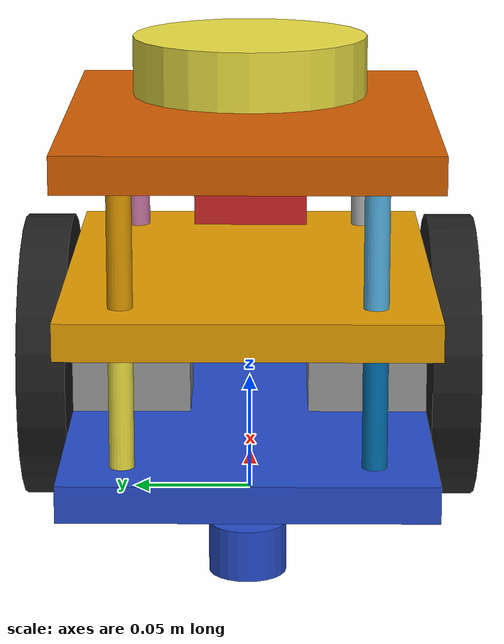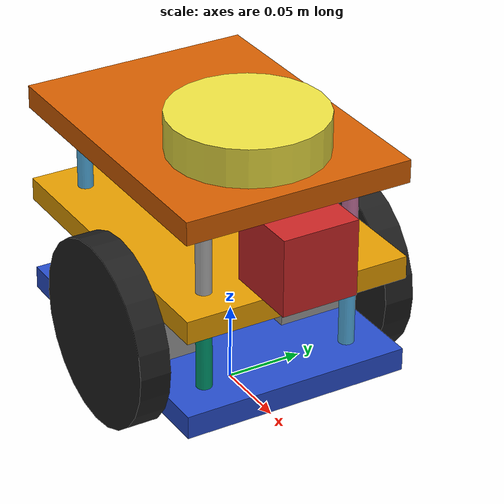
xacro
<?xml version="1.0"?>
<robot name="ros_robot" xmlns:xacro = "http://www.ros.org/wiki/xacro">
    <xacro:include filename="$(find robot_description)/urdf/properties.xacro"/>

    <xacro:include filename="$(find robot_description)/urdf/base.xacro"/>
    <xacro:include filename="$(find robot_description)/urdf/wheel.xacro"/>
    <xacro:include filename="$(find robot_description)/urdf/stack.xacro"/>
    <xacro:include filename="$(find robot_description)/urdf/motor.xacro"/>
    <xacro:include filename="$(find robot_description)/urdf/camera.xacro"/>
    <xacro:include filename="$(find robot_description)/urdf/lidar.xacro"/>

    <xacro:base name="base_robot"/>
    <xacro:motor

        name="left"
        translation = "0 0.05 0.0275"
        rotation = "${-PI/2} 0 0"
        parent = "base_link"

    />
    <xacro:motor

        name="right"
        translation = "0 -0.05 0.0275"
        rotation = "${-PI/2} 0 0"
        parent = "base_link"

    />
    <xacro:wheel

        name="left"
        translation = "0 0 0.035"
        rotation = "0 0 0"
        parent = "left_motor"

    />
    <xacro:wheel
        name="right"
        translation = "0 0 -0.035"
        rotation = "0 0 0"
        parent = "right_motor"
    />

    <xacro:stack
        name="first"
        translation = "-0.02 0 ${STACK_HEIGHT}"
        rotation = "0 0 0"
        parent = "base_link"
    />

    <xacro:stack
        name="secound"
        translation = "0 0 ${STACK_HEIGHT}"
        rotation = "0 0 0"
        parent = "first_stack"
    />

    <xacro:camera_link
        translation="0.0975 0 0.0325"
        rotation="0 0 0"
        parent="first_stack"
    />

    <xacro:lidar_link
        translation="0.04 0 0.02"
        rotation="0 0 0"
        parent="secound_stack"
    />
 </robot>

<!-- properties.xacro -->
<robot xmlns:xacro="http://www.ros.org/wiki/xacro" >
     <!-- basic constant variable-->
    <xacro:property name="PI" value= "3.1415926"/>

    <xacro:property name="SIZE_BASE" value= "0.2 0.15 0.015"/>

    <xacro:property name="WHEEL_RADIUS" value= "0.06"/>
    <xacro:property name="U_MAX" value= "10.0"/>
    <xacro:property name="V_MAX" value= "20.0"/>
    <xacro:property name="WHEEL_JOINT_DAMP" value= "0.3"/>

    <xacro:property name="RADIUS_CASTER_HOLDER" value= "0.015"/>
    <xacro:property name="LENGHT_CASTER_HOLDER" value= "0.02"/>
    <xacro:property name="RADIUS_CASTER_WHEEL" value= "0.01"/>

    <xacro:property name="SIZE_MOTOR" value= "0.04 0.04 0.05"/>

    <xacro:property name="STICK_RADIUS" value= "0.005"/>
    <xacro:property name="STICK_HEIGHT" value= "0.05"/>

    <xacro:property name="STICK_TRANSLATION_X" value= "0.075"/>
    <xacro:property name="STICK_TRANSLATION_Y" value= "0.05"/>
    <xacro:property name="STICK_TRANSLATION_Z" value= "-0.0325"/>

    <xacro:property name="STACK_HEIGHT" value= "0.065"/>

    <!-- mass of each link -->
    <xacro:property name="MASS_MOTOR" value= "0.2"/>
    <xacro:property name="MASS_STACK" value="0.25"/>
    <xacro:property name="MASS_WHEEL" value= "0.3"/>
    <xacro:property name="MASS_CASTER_HOLDER" value= "0.01413717"/>
    <xacro:property name="MASS_CASTER_WHEEL" value= "0.00418879"/>
    <xacro:property name="MASS_STICK" value= "0.003927"/>
    <!-- center of mass of each link -->
    <xacro:property name="COM_MOTOR" value= "0 0 0"/>
    <xacro:property name="COM_STACK" value= "0 0 0"/>
    <xacro:property name="COM_WHEEL" value= "0 0 0"/>
    <xacro:property name="COM_CASTER_HOLDER" value= "0 0 0"/>
    <xacro:property name="COM_CASTER_WHEEL" value= "0 0 0"/>
    <xacro:property name="COM_STICK" value= "0 0 0"/>
    <!-- inertia value of each link -->
    <xacro:property name="Ixx_stack" value= "0.009"/>
    <xacro:property name="Ixy_stack" value= "0"/>
    <xacro:property name="Ixz_stack" value= "0"/>
    <xacro:property name="Iyy_stack" value= "0.0015"/>
    <xacro:property name="Iyz_stack" value= "0"/>
    <xacro:property name="Izz_stack" value= "0.0023"/>

    <xacro:property name="Ixx_stick" value= "0.00000084"/>
    <xacro:property name="Ixy_stick" value= "0"/>
    <xacro:property name="Ixz_stick" value= "0"/>
    <xacro:property name="Iyy_stick" value= "0.00000084"/>
    <xacro:property name="Iyz_stick" value= "0"/>
    <xacro:property name="Izz_stick" value= "0.0000005"/>

    <xacro:property name="Ixx_motor" value= "0.00002733"/>
    <xacro:property name="Ixy_motor" value= "0"/>
    <xacro:property name="Ixz_motor" value= "0"/>
    <xacro:property name="Iyy_motor" value= "0.00002733"/>
    <xacro:property name="Iyz_motor" value= "0"/>
    <xacro:property name="Izz_motor" value= "0.00002133"/>

    <xacro:property name="Ixx_wheel" value= "0.00021112"/>
    <xacro:property name="Ixy_wheel" value= "0"/>
    <xacro:property name="Ixz_wheel" value= "0"/>
    <xacro:property name="Iyy_wheel" value= "0.00021112"/>
    <xacro:property name="Iyz_wheel" value= "0"/>
    <xacro:property name="Izz_wheel" value= "0.00040715"/>

    <xacro:property name="Ixx_caster_wheel" value= "0.00000017"/>
    <xacro:property name="Ixy_caster_wheel" value= "0"/>
    <xacro:property name="Ixz_caster_wheel" value= "0"/>
    <xacro:property name="Iyy_caster_wheel" value= "0.00000017"/>
    <xacro:property name="Iyz_caster_wheel" value= "0"/>
    <xacro:property name="Izz_caster_wheel" value= "0.00000017"/>

    <xacro:property name="Ixx_caster_holder" value= "0.00000127"/>
    <xacro:property name="Ixy_caster_holder" value= "0"/>
    <xacro:property name="Ixz_caster_holder" value= "0"/>
    <xacro:property name="Iyy_caster_holder" value= "0.00000127"/>
    <xacro:property name="Iyz_caster_holder" value= "0"/>
    <xacro:property name="Izz_caster_holder" value= "0.00000159"/>

     <!-- property of sensor lidar and camera -->
    <xacro:property name="camera_link" value="0.05" /> <!-- Size of square 'camera' box -->
    <xacro:property name="update_rate" value="60" />
</robot>

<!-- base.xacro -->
<robot name= "robot_base" xmlns:xacro="http://www.ros.org/wiki/xacro">

    <xacro:macro name="base" params="name">
        <link name="base_ground"/>

        <link name="base_link">
            <visual>
                <origin xyz="-0.02 0 0" rpy = "0 0 0 "/>
                <geometry>
                    <box size="${SIZE_BASE}"/>
                </geometry>
            </visual>

            <collision>
                <origin xyz="-0.02 0 0" rpy = "0 0 0 "/>
                    <geometry>
                        <box size="${SIZE_BASE}"/>
                    </geometry>
            </collision>

            <inertial>
                <origin xyz="-0.02 0 0" rpy="0.0 0.0 0.0"/>
                <mass value="0.5"/>
                <inertia ixx="0.009" ixy="0.0" ixz="0.0" iyy="0.0015" iyz="0.0" izz="0.0023"/>
            </inertial>

        </link>

        <link name="caster_holder">
            <visual>
                <origin xyz="0 0 0" rpy = "0 0 0 "/>
                <geometry>
                    <cylinder radius="${RADIUS_CASTER_HOLDER}" length="${LENGHT_CASTER_HOLDER}"/>
                </geometry>
            </visual>

            <collision>
                <origin xyz="0 0 0" rpy = "0 0 0 "/>
                <geometry>
                    <cylinder radius="${RADIUS_CASTER_HOLDER}" length="${LENGHT_CASTER_HOLDER}"/>
                </geometry>
            </collision>
            <inertial>
                <origin xyz="${COM_CASTER_HOLDER}" rpy="0.0 0.0 0.0"/>
                <mass value="${MASS_CASTER_HOLDER}"/>
                <inertia ixx="${Ixx_caster_holder}" ixy="${Ixy_caster_holder}" ixz="${Ixz_caster_holder}" iyy="${Iyy_caster_holder}" iyz="${Iyz_caster_holder}" izz="${Izz_caster_holder}"/>
            </inertial>

        </link>

        <link name="caster_wheel">
            <visual>
                <origin xyz="0 0 0" rpy = "0 0 0 "/>
                <geometry>
                        <sphere radius="${RADIUS_CASTER_WHEEL}"/>
                </geometry>
            </visual>
            <collision>
                <origin xyz="0 0 0" rpy = "0 0 0 "/>
            <geometry>
                    <sphere radius="${RADIUS_CASTER_WHEEL}"/>
            </geometry>
            </collision>
            <inertial>
                <origin xyz="${COM_CASTER_WHEEL}" rpy="0.0 0.0 0.0"/>
                <mass value="${MASS_CASTER_WHEEL}"/>
                <inertia ixx="${Ixx_caster_wheel}" ixy="${Ixy_caster_wheel}" ixz="${Ixz_caster_wheel}" iyy="${Iyy_caster_wheel}" iyz="${Iyz_caster_wheel}" izz="${Izz_caster_wheel}"/>
            </inertial>

        </link>

        <joint name="joint_base" type="fixed">
            <origin xyz="0 0.0 0.0325" rpy="0.0 0.0 0.0"/>
            <parent link="base_ground"/>
            <child link="base_link"/>
        </joint>

         <joint name="base2casterHolder" type="fixed">
            <origin xyz="-0.115 0.0 -0.0175" rpy="0.0 0.0 0.0"/>
            <parent link="base_link"/>
            <child link="caster_holder"/>
        </joint>

         <joint name="casterHolder2wheel" type="fixed">
            <origin xyz="0.0 0.0 -0.005" rpy="0.0 0.0 0.0"/>
            <parent link="caster_holder"/>
            <child link="caster_wheel"/>
        </joint>

        <gazebo reference="base_link">
            <mu>2.0</mu>
            <mu2>2.0</mu2>
            <material>
                Gazebo/Blue
            </material>
        </gazebo>

        <gazebo reference="caster_holder">
            <mu>0</mu>
            <mu2>0</mu2>
            <material>
                Gazebo/Blue
            </material>
        </gazebo>

        <gazebo reference="caster_wheel">
            <mu>0</mu>
            <mu2>0</mu2>
            <material>
                Gazebo/Black
            </material>
        </gazebo>

        <gazebo>
            <plugin name="differential_drive_controller" filename="libgazebo_ros_diff_drive.so">

                <alwaysOn>true</alwaysOn>
                <!-- Plugin update rate in Hz -->
                <updateRate>${update_rate}</updateRate>

                <!-- Name of left joint, defaults to `left_joint` -->
                <leftJoint>left_wheel_joint</leftJoint>

                <!-- Name of right joint, defaults to `right_joint` -->
                <rightJoint>right_wheel_joint</rightJoint>

                <!-- The distance from the center of one wheel to the other, in meters, defaults to 0.34 m -->
                <wheelSeparation>0.17</wheelSeparation>

                <!-- Diameter of the wheels, in meters, defaults to 0.15 m -->
                <wheelDiameter>0.12</wheelDiameter>

                <!-- Wheel acceleration, in rad/s^2, defaults to 0.0 rad/s^2 -->
                <wheelAcceleration>1.0</wheelAcceleration>

                <!-- Maximum torque which the wheels can produce, in Nm, defaults to 5 Nm -->
                <wheelTorque>20</wheelTorque>

                <!-- Topic to receive geometry_msgs/Twist message commands, defaults to `cmd_vel` -->
                <commandTopic>cmd_vel</commandTopic>

                <!-- Topic to publish nav_msgs/Odometry messages, defaults to `odom` -->
                <odometryTopic>odom</odometryTopic>

                <!-- Odometry frame, defaults to `odom` -->
                <odometryFrame>odom</odometryFrame>

                <!-- Robot frame to calculate odometry from, defaults to `base_footprint` -->
                <robotBaseFrame>base_ground</robotBaseFrame>

                <!-- Odometry source, 0 for ENCODER, 1 for WORLD, defaults to WORLD -->
                <odometrySource>world</odometrySource>

                <!-- Set to true to publish transforms for the wheel links, defaults to false -->
                <publishWheelTF>true</publishWheelTF>

                <!-- Set to true to publish transforms for the odometry, defaults to true -->
                <publishOdom>true</publishOdom>

                <!-- Set to true to publish sensor_msgs/JointState on /joint_states for the wheel joints, defaults to false -->
                <publishWheelJointState>true</publishWheelJointState>
                <rosDebugLevel>na</rosDebugLevel>

                <!-- Set to true to swap right and left wheels, defaults to true -->
                <legacyMode>false</legacyMode>
                <publishOdomTF>true</publishOdomTF>
                <publishTf>1</publishTf>
            </plugin>
          </gazebo>

    </xacro:macro>

</robot>

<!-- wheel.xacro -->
<robot name="wheel" xmlns:xacro="http://www.ros.org/wiki/xacro">
    <xacro:include filename="$(find robot_description)/urdf/properties.xacro"/>
    <xacro:macro name="wheel" params="name translation rotation parent">

        <gazebo>

        </gazebo>
        <link name="${name}_wheel">
            <visual>
                <origin xyz="0.0 0.0 0.0" rpy="0.0 0.0 0.0"/>
                <geometry>
                    <cylinder radius="${WHEEL_RADIUS}" length="0.02"/>
                </geometry>
            </visual>

            <collision>
                <origin xyz="0.0 0.0 0.0" rpy="0.0 0.0 0.0"/>
                <geometry>
                    <cylinder radius="${WHEEL_RADIUS}" length="0.02"/>
                </geometry>

            </collision>

            <inertial>
                <origin xyz="${COM_WHEEL}" rpy="0.0 0.0 0.0"/>
                <mass value="${MASS_WHEEL}"/>
                <inertia ixx="${Ixx_wheel}" ixy="${Ixy_wheel}" ixz="${Ixz_wheel}" iyy="${Iyy_wheel}" iyz="${Iyz_wheel}" izz="${Izz_wheel}"/>
            </inertial>

        </link>

        <joint name="${name}_wheel_joint" type="continuous">
            <origin xyz="${translation}" rpy="${rotation}"/>
            <parent link="${parent}"/>
            <child link="${name}_wheel"/>
            <axis xyz="0.0 0.0 1"/>
            <limit effort="${U_MAX}" velocity="${V_MAX}"/>
            <dynamics damping="${WHEEL_JOINT_DAMP}" />

        </joint>

        <gazebo reference="${name}_wheel">
            <mu>5.5</mu>
            <mu2>3.0</mu2>
            <material>
                Gazebo/Black
            </material>
        </gazebo>
    </xacro:macro>

</robot>

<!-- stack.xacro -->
<robot name= "robot_stack" xmlns:xacro="http://www.ros.org/wiki/xacro">
    <xacro:include filename="$(find robot_description)/urdf/properties.xacro"/>
    <xacro:macro name="stack" params="name translation rotation parent">

    <!-- create stack floor -->
    <link name="${name}_stack">
        <visual>
            <origin xyz="0.0 0.0 0.0" rpy="0.0 0.0 0.0"/>
            <geometry>
                <box size="${SIZE_BASE}"/>
            </geometry>
        </visual>

        <collision>
            <origin xyz="0.0 0.0 0.0" rpy="0.0 0.0 0.0"/>
            <geometry>
                <box size="${SIZE_BASE}"/>
            </geometry>
        </collision>

        <inertial>
            <origin xyz="${COM_STACK}" rpy="0.0 0.0 0.0"/>
            <mass value="${MASS_STACK}"/>
            <inertia ixx="${Ixx_stack}" ixy="${Ixy_stack}" ixz="${Ixz_stack}" iyy="${Iyy_stack}" iyz="${Iyz_stack}" izz="${Izz_stack}"/>
        </inertial>

    </link>
    <!-- create stick link  -->
    <link name="${name}_stick_1">
        <visual>
            <origin xyz="0.0 0.0 0.0" rpy="0.0 0.0 0.0"/>
            <geometry>
                <cylinder radius="${STICK_RADIUS}" length="${STICK_HEIGHT}"/>
            </geometry>
        </visual>

        <collision>
            <origin xyz="0.0 0.0 0.0" rpy="0.0 0.0 0.0"/>
            <geometry>
                <cylinder radius="${STICK_RADIUS}" length="${STICK_HEIGHT}"/>
            </geometry>
        </collision>

         <inertial>
            <origin xyz="${COM_STICK}" rpy="0.0 0.0 0.0"/>
            <mass value="${MASS_STICK}"/>
            <inertia ixx="${Ixx_stick}" ixy="${Ixy_stick}" ixz="${Ixz_stick}" iyy="${Iyy_stick}" iyz="${Iyz_stick}" izz="${Izz_stick}"/>
        </inertial>

    </link>
    <link name="${name}_stick_2">
        <visual>
            <origin xyz="0.0 0.0 0.0" rpy="0.0 0.0 0.0"/>
            <geometry>
                <cylinder radius="${STICK_RADIUS}" length="${STICK_HEIGHT}"/>
            </geometry>
        </visual>

        <collision>
            <origin xyz="0.0 0.0 0.0" rpy="0.0 0.0 0.0"/>
            <geometry>
                <cylinder radius="${STICK_RADIUS}" length="${STICK_HEIGHT}"/>
            </geometry>
        </collision>

         <inertial>
            <origin xyz="${COM_STICK}" rpy="0.0 0.0 0.0"/>
            <mass value="${MASS_STICK}"/>
            <inertia ixx="${Ixx_stick}" ixy="${Ixy_stick}" ixz="${Ixz_stick}" iyy="${Iyy_stick}" iyz="${Iyz_stick}" izz="${Izz_stick}"/>
        </inertial>

    </link>
    <link name="${name}_stick_3">
        <visual>
            <origin xyz="0.0 0.0 0.0" rpy="0.0 0.0 0.0"/>
            <geometry>
                <cylinder radius="${STICK_RADIUS}" length="${STICK_HEIGHT}"/>
            </geometry>
        </visual>

        <collision>
            <origin xyz="0.0 0.0 0.0" rpy="0.0 0.0 0.0"/>
            <geometry>
                <cylinder radius="${STICK_RADIUS}" length="${STICK_HEIGHT}"/>
            </geometry>
        </collision>

         <inertial>
            <origin xyz="${COM_STICK}" rpy="0.0 0.0 0.0"/>
            <mass value="${MASS_STICK}"/>
            <inertia ixx="${Ixx_stick}" ixy="${Ixy_stick}" ixz="${Ixz_stick}" iyy="${Iyy_stick}" iyz="${Iyz_stick}" izz="${Izz_stick}"/>
        </inertial>

    </link>

    <link name="${name}_stick_4">
        <visual>
            <origin xyz="0.0 0.0 0.0" rpy="0.0 0.0 0.0"/>
            <geometry>
                <cylinder radius="${STICK_RADIUS}" length="${STICK_HEIGHT}"/>
            </geometry>
        </visual>

        <collision>
            <origin xyz="0.0 0.0 0.0" rpy="0.0 0.0 0.0"/>
            <geometry>
                <cylinder radius="${STICK_RADIUS}" length="${STICK_HEIGHT}"/>
            </geometry>
        </collision>

         <inertial>
            <origin xyz="${COM_STICK}" rpy="0.0 0.0 0.0"/>
            <mass value="${MASS_STICK}"/>
            <inertia ixx="${Ixx_stick}" ixy="${Ixy_stick}" ixz="${Ixz_stick}" iyy="${Iyy_stick}" iyz="${Iyz_stick}" izz="${Izz_stick}"/>
        </inertial>
    </link>

<!-- joint from parent to stack_floor -->
    <joint name="${parent}_to_${name}_stack" type="fixed">
        <origin xyz="${translation}" rpy="${rotation}"/>
        <parent link="${parent}"/>
        <child link="${name}_stack"/>
    </joint>

<!-- joint from stack to 4 sticks -->
    <joint name="${name}_stack_to_stick_1" type="fixed">
        <origin xyz="${STICK_TRANSLATION_X} ${STICK_TRANSLATION_Y} ${STICK_TRANSLATION_Z}" rpy="0 0 0"/>
        <parent link="${name}_stack"/>
        <child link="${name}_stick_1"/>
    </joint>

     <joint name="${name}_stack_to_stick_2" type="fixed">
        <origin xyz="${STICK_TRANSLATION_X} -${STICK_TRANSLATION_Y} ${STICK_TRANSLATION_Z}" rpy="0 0 0"/>
        <parent link="${name}_stack"/>
        <child link="${name}_stick_2"/>
    </joint>

    <joint name="${name}_stack_to_stick_3" type="fixed">
        <origin xyz="-${STICK_TRANSLATION_X} ${STICK_TRANSLATION_Y} ${STICK_TRANSLATION_Z}" rpy="0 0 0 "/>
        <parent link="${name}_stack"/>
        <child link="${name}_stick_3"/>
    </joint>

    <joint name="${name}_stack_to_stick_4" type="fixed">
        <origin xyz="-${STICK_TRANSLATION_X} -${STICK_TRANSLATION_Y} ${STICK_TRANSLATION_Z}" rpy="0 0 0"/>
        <parent link="${name}_stack"/>
        <child link="${name}_stick_4"/>
    </joint>

    </xacro:macro>
</robot>

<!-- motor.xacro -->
<robot name= "robot_motor" xmlns:xacro="http://www.ros.org/wiki/xacro">
    <xacro:include filename="$(find robot_description)/urdf/properties.xacro"/>
    <xacro:macro name="motor" params="name translation rotation parent">

    <link name="${name}_motor">
        <visual>
            <origin xyz="0.0 0.0 0.0" rpy="0.0 0.0 0.0"/>
            <geometry>
                <box size="${SIZE_MOTOR}"/>
            </geometry>
        </visual>

        <collision>
            <origin xyz="0.0 0.0 0.0" rpy="0.0 0.0 0.0"/>
            <geometry>
                <box size="${SIZE_MOTOR}"/>
            </geometry>
        </collision>

        <inertial>
            <origin xyz="${COM_MOTOR}" rpy="0.0 0.0 0.0"/>
            <mass value="${MASS_MOTOR}"/>
            <inertia ixx="${Ixx_motor}" ixy="${Ixy_motor}" ixz="${Ixz_motor}" iyy="${Iyy_motor}" iyz="${Iyz_motor}" izz="${Izz_motor}"/>
        </inertial>

    </link>

    <joint name="${name}_motor_joint" type="fixed">

        <origin xyz="${translation}" rpy="${rotation}"/>
        <parent link="${parent}"/>
        <child link="${name}_motor"/>

    </joint>

    <gazebo reference="${name}_motor">
            <mu1>2.0</mu1>
            <mu2>2.0</mu2>
            <material>
                Gazebo/Grey
            </material>
    </gazebo>

    </xacro:macro>
</robot>

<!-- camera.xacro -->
<robot name= "robot_camera" xmlns:xacro="http://www.ros.org/wiki/xacro">
    <xacro:include filename="$(find robot_description)/urdf/properties.xacro"/>
    <xacro:macro name="camera_link" params="translation rotation parent">
        <link name="camera_link">
            <collision>
                <origin xyz="0 0 0" rpy="0 0 0"/>
                <geometry>
                    <box size="${camera_link} ${camera_link} ${camera_link}"/>
                </geometry>
            </collision>

            <visual>
                <origin xyz="0 0 0" rpy="0 0 0"/>
                <geometry>
                    <box size="${camera_link} ${camera_link} ${camera_link}"/>
                </geometry>
                <material name="red"/>
            </visual>

            <inertial>
                <mass value="1e-5" />
                <origin xyz="0 0 0" rpy="0 0 0"/>
                <inertia ixx="1e-6" ixy="0" ixz="0" iyy="1e-6" iyz="0" izz="1e-6" />
            </inertial>
        </link>

        <joint name="camera_joint" type="fixed">
            <axis xyz="0 0 1" />
            <origin xyz="${translation}" rpy="${rotation}"/>
            <parent link="${parent}"/>
            <child link="camera_link"/>
        </joint>

          <!-- camera -->
        <gazebo reference="camera_link">
          <sensor type="camera" name="camera1">
            <update_rate>${update_rate}</update_rate>
            <camera name="head">
              <horizontal_fov>1.3962634</horizontal_fov>
              <image>
                <width>800</width>
                <height>800</height>
                <format>R8G8B8</format>
              </image>
              <clip>
                <near>0.02</near>
                <far>300</far>
              </clip>
              <noise>
                <type>gaussian</type>
                <mean>0.0</mean>
                <stddev>0.007</stddev>
              </noise>
            </camera>
            <plugin name="camera_controller" filename="libgazebo_ros_camera.so">
              <alwaysOn>true</alwaysOn>
              <updateRate>0.0</updateRate>
              <cameraName>ros_robot/camera1</cameraName>
              <imageTopicName>image_raw</imageTopicName>
              <cameraInfoTopicName>camera_info</cameraInfoTopicName>
              <frameName>camera_link</frameName>
              <hackBaseline>0.07</hackBaseline>
              <distortionK1>0.0</distortionK1>
              <distortionK2>0.0</distortionK2>
              <distortionK3>0.0</distortionK3>
              <distortionT1>0.0</distortionT1>
              <distortionT2>0.0</distortionT2>
            </plugin>
          </sensor>
        </gazebo>
    </xacro:macro>
</robot>

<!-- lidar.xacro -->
<robot name="robot_lidar" xmlns:xacro="http://www.ros.org/wiki/xacro">
    <!-- create lidar scan sensor by use plugin Houyo Laser  -->
    <xacro:macro name="lidar_link" params="translation rotation parent">

        <joint name="lidar_joint" type="fixed">
            <axis xyz="0 1 0" />
            <origin xyz="${translation}" rpy="${rotation}"/>
            <parent link="${parent}"/>
            <child link="lidar_link"/>
        </joint>

        <!-- Hokuyo Laser -->
        <link name="lidar_link">
            <collision>
              <origin xyz="0 0 0" rpy="0 0 0"/>
              <geometry>
                <cylinder radius="0.04" length="0.025"/>
              </geometry>
            </collision>

            <visual>
              <origin xyz="0 0 0" rpy="0 0 0"/>
              <geometry>
                <cylinder radius="0.05" length="0.025"/>
              </geometry>
            </visual>

            <inertial>
              <mass value="1e-5" />
              <origin xyz="0 0 0" rpy="0 0 0"/>
              <inertia ixx="1e-6" ixy="0" ixz="0" iyy="1e-6" iyz="0" izz="1e-6" />
            </inertial>
        </link>

        <!-- hokuyo -->
        <gazebo reference="lidar_link">
            <sensor type="gpu_ray" name="head_lidar_sensor">
            <pose>0 0 0 0 0 0</pose>
            <visualize>false</visualize>
            <update_rate>${update_rate}</update_rate>
            <ray>
                <scan>
                <horizontal>
                    <samples>1024</samples>
                    <resolution>1</resolution>
                    <min_angle>-1.570796</min_angle>
                    <max_angle>1.570796</max_angle>
                </horizontal>
                </scan>
                <range>
                <min>0.10</min>
                <max>30.0</max>
                <resolution>0.01</resolution>
                </range>
                <noise>
                <type>gaussian</type>
                <mean>0.0</mean>
                <stddev>0.01</stddev>
                </noise>
            </ray>
            <plugin name="gazebo_ros_head_hokuyo_controller" filename="libgazebo_ros_gpu_laser.so">
                <topicName>/ros_robot/laser/scan</topicName>
                <frameName>lidar_link</frameName>
            </plugin>
            </sensor>
        </gazebo>
    </xacro:macro>

</robot>
